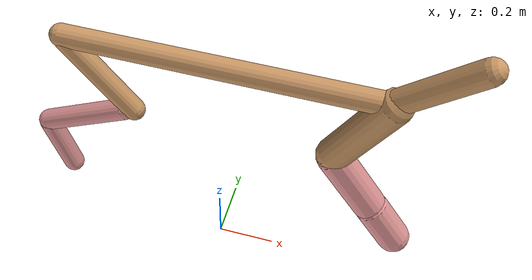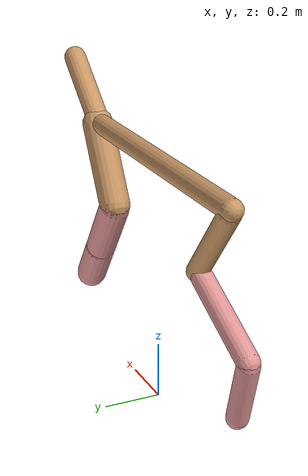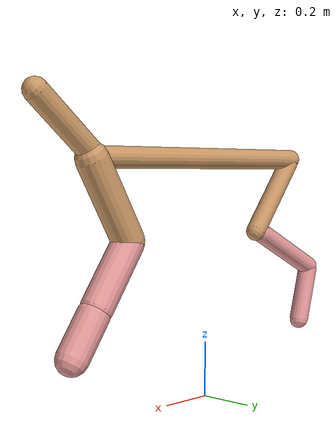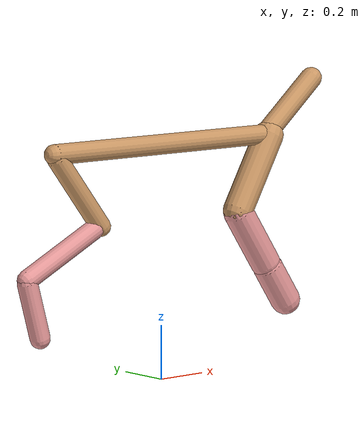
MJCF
<mujoco model="cheetah">
  <compiler angle="radian" coordinate="local" inertiafromgeom="true" settotalmass="14" />
  <default>
    <joint armature=".1" damping=".01" limited="true" solimplimit="0 .8 .03" solreflimit=".02 1" stiffness="8" />
    <geom conaffinity="0" condim="3" contype="1" friction="0.8 .1 .1" rgba="0.8 0.6 .4 1" solimp="0.0 0.8 0.01" solref="0.02 1" />
    <motor ctrllimited="true" ctrlrange="-1 1" />
  </default>
  <size nstack="300000" nuser_geom="1" />
  <option gravity="0 0 -9.81" timestep="0.01" />
  <worldbody>
    <body name="torso" pos="0.0 0.0 0.8659612999719242">
      <joint armature="0" axis="1 0 0" damping="0" limited="false" name="ignorex" pos="0 0 0" stiffness="0" type="slide" />
      <joint armature="0" axis="0 0 1" damping="0" limited="false" name="ignorez" pos="0 0 0" stiffness="0" type="slide" />
      <joint armature="0" axis="0 1 0" damping="0" limited="false" name="ignorey" pos="0 0 0" stiffness="0" type="hinge" />
      <geom fromto="-0.5 0.0 0.0 0.5384580326101003 0.0 0.0" name="torso" size="0.03716844154075783" type="capsule" />
      <geom axisangle="0 1 0 .87" name="head" pos="0.6384580326101003 0.0 0.1" size="0.04057844308385031 0.15" type="capsule" />

      <body name="bthigh" pos="-.5 0 0">
        <joint axis="0 1 0" damping="6" name="bthigh" pos="0 0 0" range="-.52 1.05" stiffness="240" type="hinge" />
        <geom axisangle="0 1 0 -3.8" name="bthigh" pos="0.11142006373727883 0.0 -0.14484608285846248" size="0.036851771229448944 0.1637302971680602" type="capsule" />
        <body name="bshin" pos="0.18284012747455766 0.0 -0.27969216571692496">
          <joint axis="0 1 0" damping="4.5" name="bshin" pos="0 0 0" range="-.785 .785" stiffness="180" type="hinge" />
          <geom axisangle="0 1 0 -2.03" name="bshin" pos="-0.1573305728440915 0.0 -0.07866528642204575" rgba="0.9 0.6 0.6 1" size="0.036851771229448944 0.1693761694842002" type="capsule" />
          <body name="bfoot" pos="-0.314661145688183 0.0 -0.1573305728440915">
            <joint axis="0 1 0" damping="3" name="bfoot" pos="0 0 0" range="-.4 .785" stiffness="120" type="hinge" />
            <geom axisangle="0 1 0 -.27" name="bfoot" pos="0.03358771142870693 0.0 -0.10860026695281909" rgba="0.9 0.6 0.6 1" size="0.036851771229448944 0.10614239954343213" type="capsule" />
            <inertial mass="10" />
          </body>
        </body>
      </body>
      <body name="fthigh" pos="0.5384580326101003 0.0 0.0">
        <joint axis="0 1 0" damping="4.5" name="fthigh" pos="0 0 0" range="-1.5 0.8" stiffness="180" type="hinge" />
        <geom axisangle="0 1 0 .52" name="fthigh" pos="-0.08163375630238892 0.0 -0.1399435822326667" size="0.056093151530775695 0.1560887582596924" type="capsule" />
        <body name="fshin" pos="-0.16326751260477784 0.0 -0.2798871644653334">
          <joint axis="0 1 0" damping="3" name="fshin" pos="0 0 0" range="-1.2 1.1" stiffness="120" type="hinge" />
          <geom axisangle="0 1 0 -.6" name="fshin" pos="0.07577394349827711 0.0 -0.10491776792069137" rgba="0.9 0.6 0.6 1" size="0.056093151530775695 0.12440156673328866" type="capsule" />
          <body name="ffoot" pos="0.15154788699655422 0.0 -0.20983553584138273">
            <joint axis="0 1 0" damping="1.5" name="ffoot" pos="0 0 0" range="-3.1 -0.3" stiffness="60" type="hinge" />
            <geom axisangle="0 1 0 -.6" name="ffoot" pos="0.05157127436996363 0.0 -0.08022198235327677" rgba="0.9 0.6 0.6 1" size="0.056093151530775695 0.08215197803141705" type="capsule" />
            <inertial mass="10" />
          </body>
        </body>
      </body>
    </body>
  </worldbody>
  <actuator>
    <motor gear="120" joint="bthigh" name="bthigh" />
    <motor gear="90" joint="bshin" name="bshin" />
    <motor gear="60" joint="bfoot" name="bfoot" />
    <motor gear="120" joint="fthigh" name="fthigh" />
    <motor gear="60" joint="fshin" name="fshin" />
    <motor gear="30" joint="ffoot" name="ffoot" />
  </actuator>
</mujoco>
